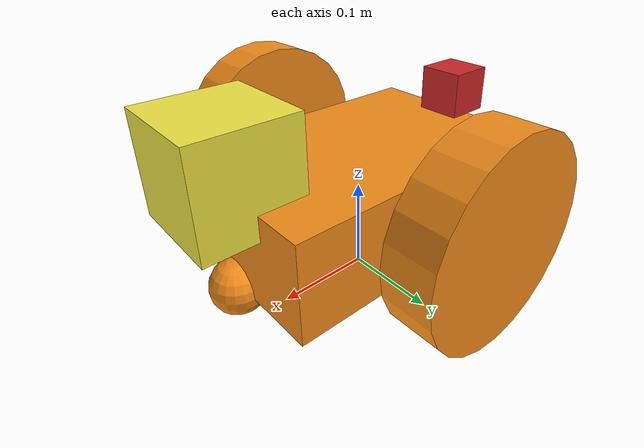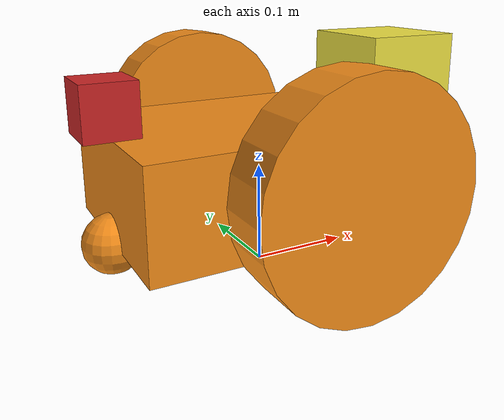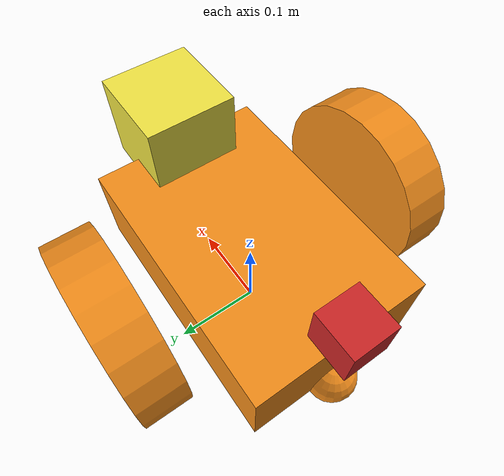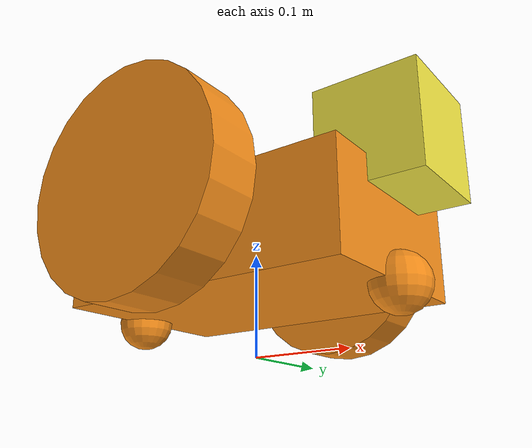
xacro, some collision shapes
<?xml version="1.0"?>
<!-- Revolute-Revolute Manipulator -->
<robot name="t_frog" xmlns:xacro="http://www.ros.org/wiki/xacro">
  <!-- Constants for robot dimensions -->
  <xacro:property name="PI" value="3.1415926535897931"/>
  <xacro:property name="camera_link" value="0.05"/> <!-- Size of square 'camera' box -->
  <xacro:property name="hokuyo_link" value="0.1" /> <!-- Size of square 'hokuyo' box -->

  <!-- Import all Gazebo-customization elements, including Gazebo colors -->
  <xacro:include filename="$(find t_frog_description)/urdf/t_frog.gazebo" />
  <!-- Import Rviz colors -->
  <xacro:include filename="$(find t_frog_description)/urdf/materials.xacro" />

  <!-- Used for fixing robot to Gazebo 'base_link' -->

  <!-- Base Link -->
  <link name="base_link">
    <collision>
      <origin xyz="0 0 0.1" rpy="0 0 0"/>
      <geometry>
	<box size=".3 .2 .1"/>
      </geometry>
    </collision>

    <visual>
      <origin xyz="0 0 0.1" rpy="0 0 0"/>
      <geometry>
	<box size=".3 .2 .1"/>
      </geometry>
      <material name="orange"/>
    </visual>

    <collision>
      <origin xyz="0.15 0 0.05" rpy="0 0 0"/>
      <geometry>
	<sphere radius="0.028"/>
      </geometry>
      <surface>
        <friction>
          <ode>
	    <mu>0</mu>
	    <mu2>0</mu2>
	    <slip1>1.0</slip1>
	    <slip2>1.0</slip2>
	  </ode>
        </friction>
      </surface>
    </collision>

    <visual>
      <origin xyz="0.15 0 0.05" rpy="0 0 0"/>
      <geometry>
	<sphere radius="0.028"/>
      </geometry>
      <material name="orange"/>
    </visual>

    <collision>
      <origin xyz="-0.15 0 0.05" rpy="0 0 0"/>
      <geometry>
	<sphere radius="0.028"/>
      </geometry>
      <surface>
        <friction>
          <ode>
	    <mu>0</mu>
	    <mu2>0</mu2>
	    <slip1>1.0</slip1>
	    <slip2>1.0</slip2>
	  </ode>
        </friction>
      </surface>
    </collision>

    <visual>
      <origin xyz="-0.15 0 0.05" rpy="0 0 0"/>
      <geometry>
	<sphere radius="0.028"/>
      </geometry>
      <material name="orange"/>
    </visual>

    <inertial>
       <mass value="5" />
       <origin xyz="0 0 0.1" rpy="0 0 0"/>
       <inertia ixx="5" ixy="0" ixz="0" iyy="5" iyz="0" izz="5" />
    </inertial>
  </link>

  <link name="left_wheel">
    <collision name="collision">
      <origin xyz="0 0.03 0" rpy="0 1.5707 1.5707"/>
      <geometry>
         <cylinder  length="0.05" radius="0.1"/>
      </geometry>
    </collision>
    <visual name="visual">
      <origin xyz="0 0.03 0" rpy="0 1.5707 1.5707"/>
      <geometry>
        <cylinder  length="0.05" radius="0.1"/>
      </geometry>
    </visual>
    <inertial>
      <mass value="0.1" />
      <origin xyz="0 0.03 0"/>
      <inertia ixx="0.1" ixy="0" ixz="0" iyy="0.1" iyz="0" izz="0.1" />
    </inertial>
  </link>

  <joint type="revolute" name="left_wheel_hinge">
    <origin xyz="0 0.13 0.12" rpy="0 0 0"/>
    <child link="left_wheel">left_wheel</child>
    <parent link="base_link">base_link</parent>
    <axis xyz="0 1 0"/>
    <limit effort="30" velocity="1.0"  lower="-100" upper="100" />
  </joint>

  <link name="right_wheel">
    <collision name="collision">
      <origin xyz="0 -0.03 0" rpy="0 1.5707 1.5707"/>
      <geometry>
         <cylinder  length="0.05" radius="0.1"/>
      </geometry>
    </collision>
    <visual name="visual">
      <origin xyz="0 -0.03 0" rpy="0 1.5707 1.5707"/>
      <geometry>
        <cylinder  length="0.05" radius="0.1"/>
      </geometry>
    </visual>
    <inertial>
      <mass value="0.1" />
      <origin xyz="0 -0.03 0"/>
      <inertia ixx="0.1" ixy="0" ixz="0" iyy="0.1" iyz="0" izz="0.1" />
    </inertial>
  </link>

  <joint type="revolute" name="right_wheel_hinge">
    <origin xyz="0 -0.13 0.12" rpy="0 0 0"/>
    <child link="right_wheel">right_wheel</child>
    <parent link="base_link">base_link</parent>
    <axis xyz="0 1 0"/>
    <limit effort="30" velocity="1.0"  lower="-100" upper="100" />
  </joint>

  <joint name="hokuyo_joint" type="fixed">
    <axis xyz="0 1 0"/>
    <origin xyz="0.15 0 0.175" rpy="0 0 0"/>
    <parent link="base_link"/>
    <child link="hokuyo_link"/>
  </joint>

  <link name="hokuyo_link">
    <collision>
      <origin xyz="0 0 0" rpy="0 0 0"/>
      <geometry>
        <box size="${hokuyo_link} ${hokuyo_link} ${hokuyo_link}"/>
      </geometry>
    </collision>

    <visual>
      <origin xyz="0 0 0" rpy="0 0 0"/>
      <geometry>
        <mesh filename="package://t_frog_description/meshes/hokuyo.dae"/>
      </geometry>
    </visual>

    <inertial>
      <mass value="1"/>
      <origin xyz="0 0 0" rpy="0 0 0"/>
      <inertia ixx="1" ixy="0" ixz="0" iyy="1" iyz="0" izz="1"/>
    </inertial>
  </link>

  <joint name="camera_joint" type="fixed">
    <axis xyz="0 1 0" />
    <origin xyz="-0.15 0 0.175" rpy="0 0 0"/>
    <parent link="base_link"/>
    <child link="camera_link"/>
  </joint>

  <link name="camera_link">
    <collision>
      <origin xyz="0 0 0" rpy="0 0 0"/>
      <geometry>
        <box size="${camera_link} ${camera_link} ${camera_link}"/>
      </geometry>
    </collision>

    <visual>
      <origin xyz="0 0 0" rpy="0 0 0"/>
      <geometry>
        <box size="${camera_link} ${camera_link} ${camera_link}"/>
      </geometry>
      <material name="red"/>
    </visual>

    <inertial>
      <mass value="1"/>
      <origin xyz="0 0 0" rpy="0 0 0"/>
      <inertia ixx="1" ixy="0" ixz="0" iyy="1" iyz="0" izz="1"/>
    </inertial>

  </link>

  <transmission name="tran1">
    <type>transmission_interface/SimpleTransmission</type>
    <joint name="left_wheel_hinge">
      <hardwareInterface>VelocityJointInterface</hardwareInterface>
    </joint>
  <actuator name="left_motor">
      <hardwareInterface>VelocityJointInterface</hardwareInterface>
      <mechanicalReduction>1</mechanicalReduction>
    </actuator>
  </transmission>

  <transmission name="tran2">
    <type>transmission_interface/SimpleTransmission</type>
    <joint name="right_wheel_hinge">
      <hardwareInterface>VelocityJointInterface</hardwareInterface>
    </joint>
  <actuator name="right_motor">
      <hardwareInterface>VelocityJointInterface</hardwareInterface>
      <mechanicalReduction>1</mechanicalReduction>
    </actuator>
  </transmission>
</robot>
